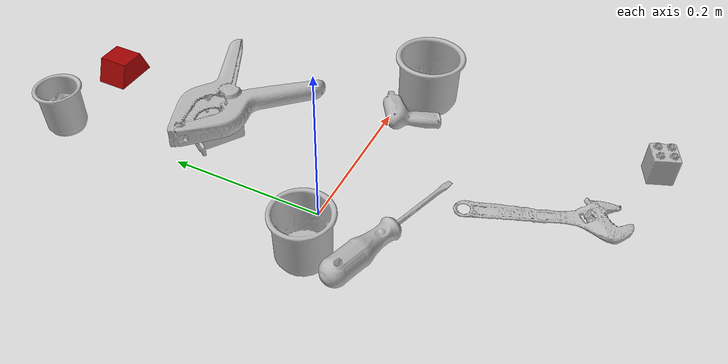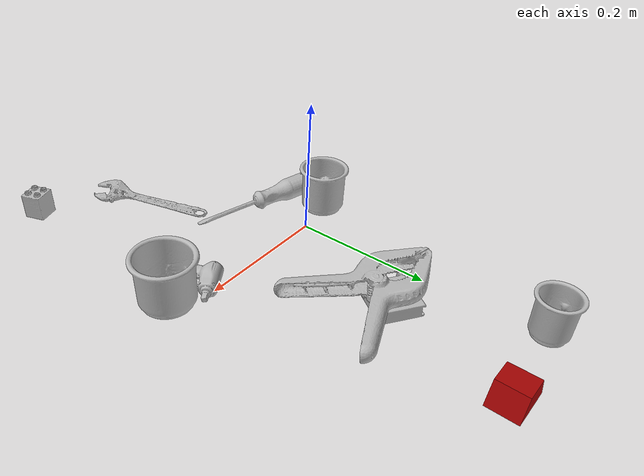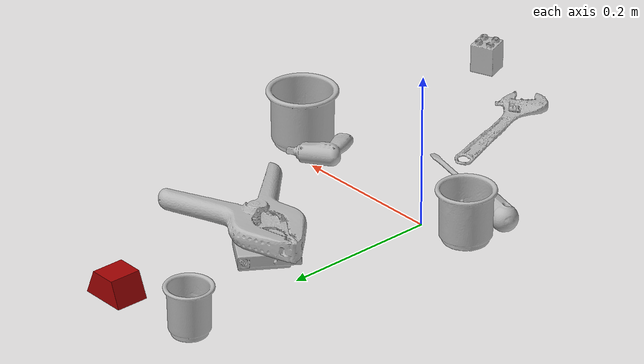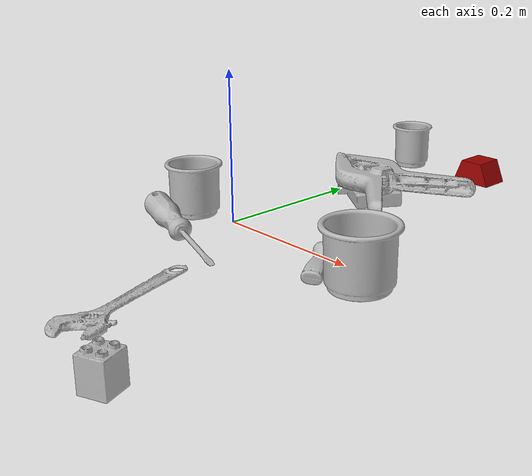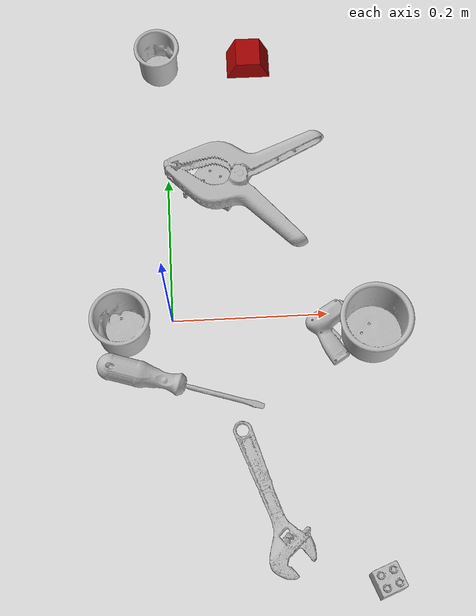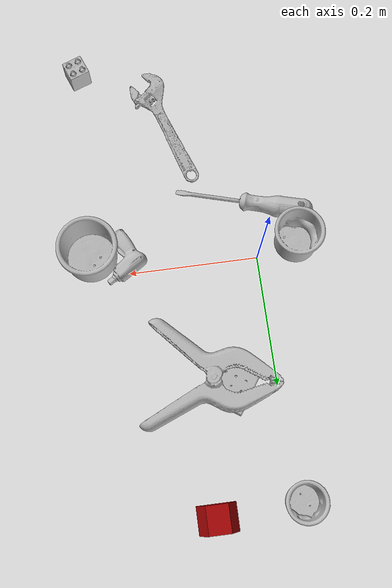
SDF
<sdf version="1.4">
  <world name="default">
    <light name="light1" type="point">
      <pose>0 0 1 0 0 0</pose>
      <diffuse>3 3 3 1</diffuse>
      <specular>3 3 3 1</specular>
    </light>
    <light name="light2" type="point">
      <pose>0 0.5 2 0 0 0</pose>
      <diffuse>1 1 1 1</diffuse>
      <specular>1 1 1 1</specular>
    </light>
    <light name="light3" type="point">
      <pose>0 0.5 2 0 0 0</pose>
      <diffuse>3 3 3 1</diffuse>
      <specular>3 3 3 1</specular>
    </light>
    <scene>
      <ambient>0.7 0.7 0.7</ambient>
    </scene>
    <model name="cup1">
      <link name="link_cup1">
        <collision name="default">
          <geometry>
            <mesh>
              <uri>model://b_cups/collision_meshes/collision.obj</uri>
              <scale>1.0 1.0 1.0</scale>
            </mesh>
          </geometry>
          <surface>
            <friction>
              <ode>
                <mu>0.5</mu>
                <mu2>0.5</mu2>
              </ode>
            </friction>
          <contact>
        <ode>
            <max_vel>0</max_vel>
            <min_depth>0.0001</min_depth>
            <kp>1e8</kp>
        </ode>
    </contact></surface>
        </collision>
        <visual name="default">
          <geometry>
            <mesh>
              <uri>model://b_cups/visual_meshes/visual.dae</uri>
              <scale>1.0 1.0 1.0</scale>
            </mesh>
          </geometry>
        </visual>
        <inertial>
          <mass>0.03190340846776962</mass>
          <pose>0.0005182004533708096 0.0018058607820421457 -0.0013381806202232838 0.11356328214070865 0.03872483993123738 -0.34569243052877063</pose>
          <inertia>
            <ixx>2.0883017e-05</ixx>
            <iyy>2.0486541e-05</iyy>
            <izz>1.7572664e-05</izz>
            <ixy>0</ixy>
            <ixz>0</ixz>
            <iyz>0</iyz>
          </inertia>
        </inertial>
      </link>
      <pose>-0.008186989463865757 0.3694961965084076 0.031996142119169235 -0.007629747248925939 -0.0038409062214960483 -0.19159446450924036</pose>
    </model>
    <model name="cup2">
      <link name="link_cup2">
        <collision name="default">
          <geometry>
            <mesh>
              <uri>model://e_cups/collision_meshes/collision.obj</uri>
              <scale>1.0 1.0 1.0</scale>
            </mesh>
          </geometry>
          <surface>
            <friction>
              <ode>
                <mu>0.5</mu>
                <mu2>0.5</mu2>
              </ode>
            </friction>
          <contact>
        <ode>
            <max_vel>0</max_vel>
            <min_depth>0.0001</min_depth>
            <kp>1e8</kp>
        </ode>
    </contact></surface>
        </collision>
        <visual name="default">
          <geometry>
            <mesh>
              <uri>model://e_cups/visual_meshes/visual.dae</uri>
              <scale>1.0 1.0 1.0</scale>
            </mesh>
          </geometry>
        </visual>
        <inertial>
          <mass>0.09350046515464783</mass>
          <pose>0.0011355748865753412 0.0028797851409763098 -0.0038829720579087734 0.69524087765449 0.08767898447354379 -0.5235249697507389</pose>
          <inertia>
            <ixx>8.2444014e-05</ixx>
            <iyy>8.6165805e-05</iyy>
            <izz>7.882601e-05</izz>
            <ixy>0</ixy>
            <ixz>0</ixz>
            <iyz>0</iyz>
          </inertia>
        </inertial>
      </link>
      <pose>-0.06130845472216606 -0.01510676834732294 0.035599835216999054 0.00012275692163298945 -0.00015286289763529956 2.5139502660937914</pose>
    </model>
    <model name="cup3">
      <link name="link_cup3">
        <collision name="default">
          <geometry>
            <mesh>
              <uri>model://h_cups/collision_meshes/collision.obj</uri>
              <scale>1.0 1.0 1.0</scale>
            </mesh>
          </geometry>
          <surface>
            <friction>
              <ode>
                <mu>0.5</mu>
                <mu2>0.5</mu2>
              </ode>
            </friction>
          <contact>
        <ode>
            <max_vel>0</max_vel>
            <min_depth>0.0001</min_depth>
            <kp>1e8</kp>
        </ode>
    </contact></surface>
        </collision>
        <visual name="default">
          <geometry>
            <mesh>
              <uri>model://h_cups/visual_meshes/visual.dae</uri>
              <scale>1.0 1.0 1.0</scale>
            </mesh>
          </geometry>
        </visual>
        <inertial>
          <mass>0.05626832693815231</mass>
          <pose>-2.7024709197576158e-05 0.00023018589126877487 -0.0018405396258458495 -0.02436208446622447 0.06545190020339471 0.12885609358770897</pose>
          <inertia>
            <ixx>7.2667885e-05</ixx>
            <iyy>7.180077e-05</iyy>
            <izz>7.620872e-05</izz>
            <ixy>0</ixy>
            <ixz>0</ixz>
            <iyz>0</iyz>
          </inertia>
        </inertial>
      </link>
      <pose>0.2539418041706085 -0.03208933770656586 0.037758003920316696 -6.473199114308761e-06 1.1357988855431747e-05 -0.8279136158869133</pose>
    </model>
    <model name="toy1">
      <link name="link_toy1">
        <collision name="default">
          <geometry>
            <mesh>
              <uri>model://nine_hole_peg_test/collision_meshes/collision.obj</uri>
              <scale>0.5 0.5 0.5</scale>
            </mesh>
          </geometry>
          <surface>
            <friction>
              <ode>
                <mu>0.5</mu>
                <mu2>0.5</mu2>
              </ode>
            </friction>
          <contact>
        <ode>
            <max_vel>0</max_vel>
            <min_depth>0.0001</min_depth>
            <kp>1e8</kp>
        </ode>
    </contact></surface>
        </collision>
        <visual name="default">
          <geometry>
            <mesh>
              <uri>model://nine_hole_peg_test/visual_meshes/visual.dae</uri>
              <scale>0.5 0.5 0.5</scale>
            </mesh>
          </geometry>
        </visual>
        <inertial>
          <mass>0.06318242102861404</mass>
          <pose>-0.0023086941801011562 -0.004823808092623949 1.3230346667114645e-05 -0.0014666789322941463 0.0007194184826049595 -0.6342412444031488</pose>
          <inertia>
            <ixx>2.4699024e-05</ixx>
            <iyy>2.3061213e-05</iyy>
            <izz>4.327997e-05</izz>
            <ixy>0</ixy>
            <ixz>0</ixz>
            <iyz>0</iyz>
          </inertia>
        </inertial>
      </link>
      <pose>0.0649031400680542 0.19124813377857208 0.010388482362031937 2.209201527928983e-06 7.125635411402637e-05 2.5569851678259643</pose>
    </model>
    <model name="toy2">
      <link name="link_toy2">
        <collision name="default">
          <geometry>
            <mesh>
              <uri>model://prism/collision_meshes/collision.obj</uri>
              <scale>0.5 0.5 0.5</scale>
            </mesh>
          </geometry>
          <surface>
            <friction>
              <ode>
                <mu>0.5</mu>
                <mu2>0.5</mu2>
              </ode>
            </friction>
          <contact>
        <ode>
            <max_vel>0</max_vel>
            <min_depth>0.0001</min_depth>
            <kp>1e8</kp>
        </ode>
    </contact></surface>
        </collision>
        <visual name="default">
          <geometry>
            <mesh>
              <uri>model://prism/visual_meshes/visual.dae</uri>
              <scale>0.5 0.5 0.5</scale>
            </mesh>
          </geometry>
        </visual>
        <inertial>
          <mass>0.058882199227809906</mass>
          <pose>-4.92679828312248e-05 -2.480786349678965e-07 -0.0016934550367295742 0.0 0.00655918030046738 0.0</pose>
          <inertia>
            <ixx>1.32851155e-05</ixx>
            <iyy>1.6055232e-05</iyy>
            <izz>1.9665738e-05</izz>
            <ixy>0</ixy>
            <ixz>0</ixz>
            <iyz>0</iyz>
          </inertia>
        </inertial>
      </link>
      <pose>0.11556162685155869 0.3774108290672302 0.016085002571344376 4.922882335441092e-08 -4.778043823068035e-08 3.1341578737913385</pose>
    </model>
    <model name="toy3">
      <link name="link_toy3">
        <collision name="default">
          <geometry>
            <mesh>
              <uri>model://b_toy_airplane/collision_meshes/collision.obj</uri>
              <scale>0.5 0.5 0.5</scale>
            </mesh>
          </geometry>
          <surface>
            <friction>
              <ode>
                <mu>0.5</mu>
                <mu2>0.5</mu2>
              </ode>
            </friction>
          <contact>
        <ode>
            <max_vel>0</max_vel>
            <min_depth>0.0001</min_depth>
            <kp>1e8</kp>
        </ode>
    </contact></surface>
        </collision>
        <visual name="default">
          <geometry>
            <mesh>
              <uri>model://b_toy_airplane/visual_meshes/visual.dae</uri>
              <scale>0.5 0.5 0.5</scale>
            </mesh>
          </geometry>
        </visual>
        <inertial>
          <mass>0.06070837751030922</mass>
          <pose>0.002540682442486286 0.0020077924709767103 0.0047715334221720695 -0.040018114249042835 -0.04022179473329346 -0.5601502235260123</pose>
          <inertia>
            <ixx>2.8176557e-05</ixx>
            <iyy>1.1262445e-05</iyy>
            <izz>3.5054447e-05</izz>
            <ixy>0</ixy>
            <ixz>0</ixz>
            <iyz>0</iyz>
          </inertia>
        </inertial>
      </link>
      <pose>0.19777575135231018 -0.023762263357639313 0.008447529748082161 0.17845530147110217 0.05203495082411323 0.564356012578591</pose>
    </model>
    <model name="toy4">
      <link name="link_toy4">
        <collision name="default">
          <geometry>
            <mesh>
              <uri>model://f_lego_duplo/collision_meshes/collision.obj</uri>
              <scale>1.0 1.0 1.0</scale>
            </mesh>
          </geometry>
          <surface>
            <friction>
              <ode>
                <mu>0.5</mu>
                <mu2>0.5</mu2>
              </ode>
            </friction>
          <contact>
        <ode>
            <max_vel>0</max_vel>
            <min_depth>0.0001</min_depth>
            <kp>1e8</kp>
        </ode>
    </contact></surface>
        </collision>
        <visual name="default">
          <geometry>
            <mesh>
              <uri>model://f_lego_duplo/visual_meshes/visual.dae</uri>
              <scale>1.0 1.0 1.0</scale>
            </mesh>
          </geometry>
        </visual>
        <inertial>
          <mass>0.029542475938796997</mass>
          <pose>2.369392677792348e-05 0.00013393184053711593 0.0018837879179045558 0.029838766168002753 -0.014424835911361083 -0.6756712748416152</pose>
          <inertia>
            <ixx>6.2424897e-06</ixx>
            <iyy>6.2981026e-06</iyy>
            <izz>5.4187462e-06</izz>
            <ixy>0</ixy>
            <ixz>0</ixz>
            <iyz>0</iyz>
          </inertia>
        </inertial>
      </link>
      <pose>0.24426639080047607 -0.33975064754486084 0.02187100052833557 -1.2574044761180132e-06 7.872488658546685e-07 0.3680120434699424</pose>
    </model>
    <model name="hardware1">
      <link name="link_hardware1">
        <collision name="default">
          <geometry>
            <mesh>
              <uri>model://extra_large_clamp/collision_meshes/collision.obj</uri>
              <scale>1.0 1.0 1.0</scale>
            </mesh>
          </geometry>
          <surface>
            <friction>
              <ode>
                <mu>0.5</mu>
                <mu2>0.5</mu2>
              </ode>
            </friction>
          <contact>
        <ode>
            <max_vel>0</max_vel>
            <min_depth>0.0001</min_depth>
            <kp>1e8</kp>
        </ode>
    </contact></surface>
        </collision>
        <visual name="default">
          <geometry>
            <mesh>
              <uri>model://extra_large_clamp/visual_meshes/visual.dae</uri>
              <scale>1.0 1.0 1.0</scale>
            </mesh>
          </geometry>
        </visual>
        <inertial>
          <mass>0.20469266176223755</mass>
          <pose>0.00323202065192163 -7.615445792907849e-05 0.0003172155993524939 0.013786991356050505 -0.0005066836095273004 -0.000893628832478523</pose>
          <inertia>
            <ixx>0.00031109934</ixx>
            <iyy>0.0005356169</iyy>
            <izz>0.00081831246</izz>
            <ixy>0</ixy>
            <ixz>0</ixz>
            <iyz>0</iyz>
          </inertia>
        </inertial>
      </link>
      <pose>0.09507768601179123 0.1800752878189087 0.03887416422367096 -0.03158043873023297 -0.008901833745690162 2.933145026267117</pose>
    </model>
    <model name="hardware2">
      <link name="link_hardware2">
        <collision name="default">
          <geometry>
            <mesh>
              <uri>model://flat_screwdriver/collision_meshes/collision.obj</uri>
              <scale>1.0 1.0 1.0</scale>
            </mesh>
          </geometry>
          <surface>
            <friction>
              <ode>
                <mu>0.5</mu>
                <mu2>0.5</mu2>
              </ode>
            </friction>
          <contact>
        <ode>
            <max_vel>0</max_vel>
            <min_depth>0.0001</min_depth>
            <kp>1e8</kp>
        </ode>
    </contact></surface>
        </collision>
        <visual name="default">
          <geometry>
            <mesh>
              <uri>model://flat_screwdriver/visual_meshes/visual.dae</uri>
              <scale>1.0 1.0 1.0</scale>
            </mesh>
          </geometry>
        </visual>
        <inertial>
          <mass>0.09510745853185654</mass>
          <pose>-0.048918697983026505 -0.0006576799787580967 -0.000614091579336673 -0.5614762322958965 -0.003233723970645699 0.006982278511552064</pose>
          <inertia>
            <ixx>1.1236876e-05</ixx>
            <iyy>0.00014265477</iyy>
            <izz>0.00014258873</izz>
            <ixy>0</ixy>
            <ixz>0</ixz>
            <iyz>0</iyz>
          </inertia>
        </inertial>
      </link>
      <pose>0.006980814039707184 -0.0880979597568512 0.015186932869255543 0.0007645540148944212 0.058233371189371184 -0.303342938969229</pose>
    </model>
    <model name="hardware3">
      <link name="link_hardware3">
        <collision name="default">
          <geometry>
            <mesh>
              <uri>model://adjustable_wrench/collision_meshes/collision.obj</uri>
              <scale>1.0 1.0 1.0</scale>
            </mesh>
          </geometry>
          <surface>
            <friction>
              <ode>
                <mu>0.5</mu>
                <mu2>0.5</mu2>
              </ode>
            </friction>
          <contact>
        <ode>
            <max_vel>0</max_vel>
            <min_depth>0.0001</min_depth>
            <kp>1e8</kp>
        </ode>
    </contact></surface>
        </collision>
        <visual name="default">
          <geometry>
            <mesh>
              <uri>model://adjustable_wrench/visual_meshes/visual.dae</uri>
              <scale>1.0 1.0 1.0</scale>
            </mesh>
          </geometry>
        </visual>
        <inertial>
          <mass>0.02741360291838646</mass>
          <pose>0.03740980476140976 -0.002896887017413974 -0.0011149230413138866 -0.0144733350781748 0.006656025939833136 -0.010954202845362587</pose>
          <inertia>
            <ixx>5.610589e-06</ixx>
            <iyy>6.5665416e-05</iyy>
            <izz>7.0977985e-05</izz>
            <ixy>0</ixy>
            <ixz>0</ixz>
            <iyz>0</iyz>
          </inertia>
        </inertial>
      </link>
      <pose>0.11524252593517303 -0.23577900230884552 0.006125039886683226 0.04675897538566385 -0.029270545446877173 -1.2606016815005139</pose>
    </model>
  <physics type="ode">
      <max_contacts>50</max_contacts>
      <ode>
        <solver>
          <type>quick</type>
          <iters>75</iters>
        </solver>
        <constraints>
          <contact_max_correcting_vel>0</contact_max_correcting_vel>
          <contact_surface_layer>0</contact_surface_layer>
        </constraints>
      </ode>
    </physics></world>
</sdf>
